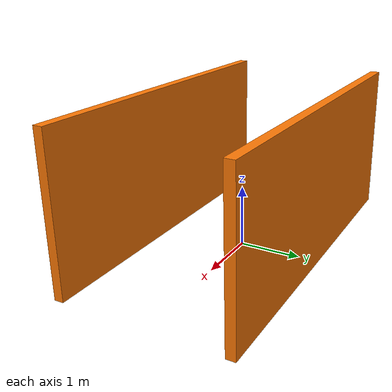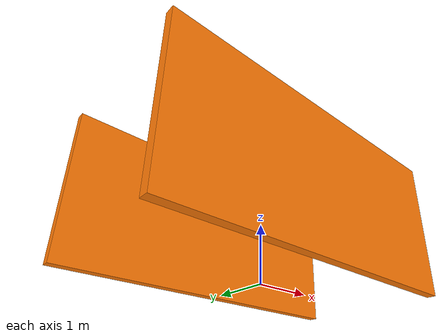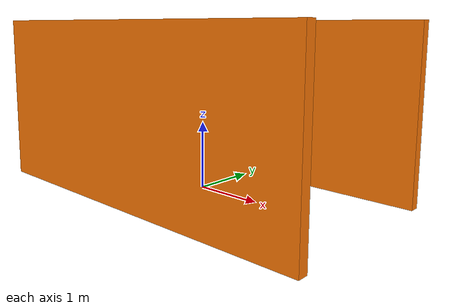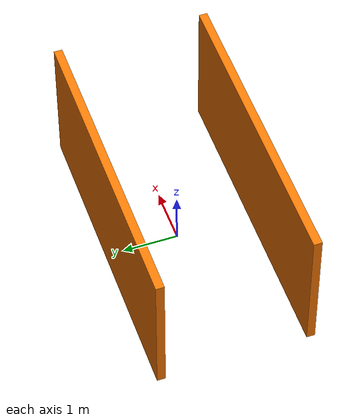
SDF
<?xml version='1.0'?>
<sdf version='1.7'>
  <model name='korytarzyk'>
    <pose>-0.050422 -0.087273 0 0 -0 0</pose>
    <link name='Wall_52'>
      <collision name='Wall_52_Collision'>
        <geometry>
          <box>
            <size>5.5 0.15 2.5</size>
          </box>
        </geometry>
        <pose>0 0 1.25 0 -0 0</pose>
      </collision>
      <visual name='Wall_52_Visual'>
        <pose>0 0 1.25 0 -0 0</pose>
        <geometry>
          <box>
            <size>5.5 0.15 2.5</size>
          </box>
        </geometry>
        <material>
          <script>
            <uri>file://media/materials/scripts/gazebo.material</uri>
            <name>Gazebo/Grey</name>
          </script>
          <ambient>0.996078 0.47451 0.0196078 1</ambient>
        </material>
        <meta>
          <layer>0</layer>
        </meta>
      </visual>
      <pose>0.005292 -1.33992 0 0 -0 0</pose>
    </link>
    <link name='Wall_54'>
      <collision name='Wall_54_Collision'>
        <geometry>
          <box>
            <size>5.5 0.15 2.5</size>
          </box>
        </geometry>
        <pose>0 0 1.25 0 -0 0</pose>
      </collision>
      <visual name='Wall_54_Visual'>
        <pose>0 0 1.25 0 -0 0</pose>
        <geometry>
          <box>
            <size>5.5 0.15 2.5</size>
          </box>
        </geometry>
        <material>
          <script>
            <uri>file://media/materials/scripts/gazebo.material</uri>
            <name>Gazebo/Grey</name>
          </script>
          <ambient>0.996078 0.47451 0.0196078 1</ambient>
        </material>
        <meta>
          <layer>0</layer>
        </meta>
      </visual>
      <pose>-0.005292 1.33992 0 0 -0 3.14159</pose>
    </link>
    <static>1</static>
  </model>
</sdf>
